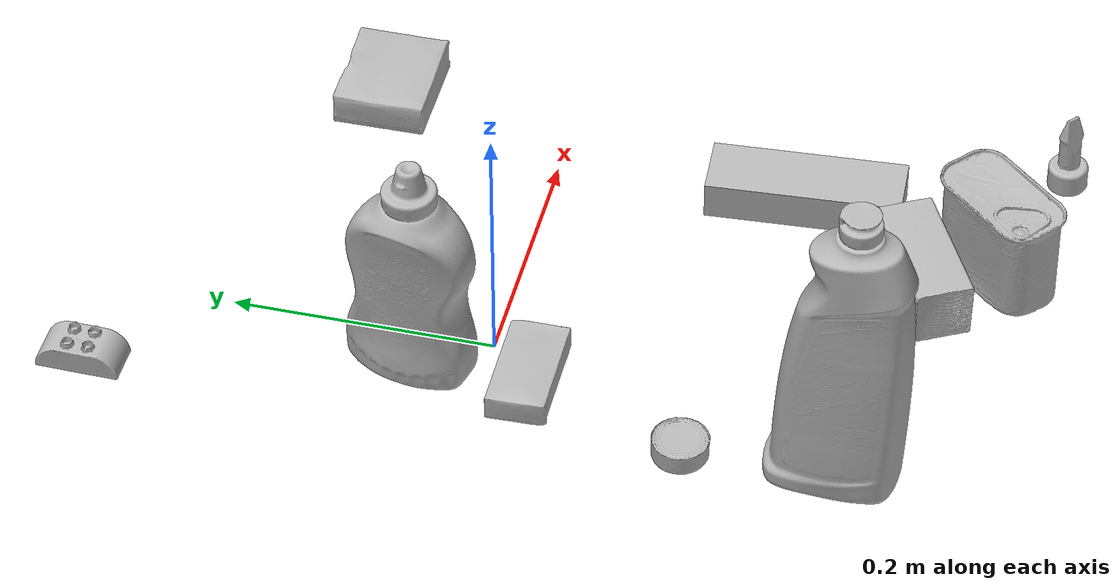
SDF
<sdf version="1.4">
  <world name="default">
    <light name="light1" type="point">
      <pose>0 0 1 0 0 0</pose>
      <diffuse>3 3 3 1</diffuse>
      <specular>3 3 3 1</specular>
    </light>
    <light name="light2" type="point">
      <pose>0 0.5 2 0 0 0</pose>
      <diffuse>1 1 1 1</diffuse>
      <specular>1 1 1 1</specular>
    </light>
    <light name="light3" type="point">
      <pose>0 0.5 2 0 0 0</pose>
      <diffuse>3 3 3 1</diffuse>
      <specular>3 3 3 1</specular>
    </light>
    <scene>
      <ambient>0.7 0.7 0.7</ambient>
    </scene>
    <model name="bottle1">
      <link name="link_bottle1">
        <collision name="default">
          <geometry>
            <mesh>
              <uri>model://bleach_cleanser/collision_meshes/collision.obj</uri>
              <scale>1.0 1.0 1.0</scale>
            </mesh>
          </geometry>
          <surface>
            <friction>
              <ode>
                <mu>0.5</mu>
                <mu2>0.5</mu2>
              </ode>
            </friction>
          <contact>
        <ode>
            <max_vel>0</max_vel>
            <min_depth>0.0001</min_depth>
            <kp>1e8</kp>
        </ode>
    </contact></surface>
        </collision>
        <visual name="default">
          <geometry>
            <mesh>
              <uri>model://bleach_cleanser/visual_meshes/visual.dae</uri>
              <scale>1.0 1.0 1.0</scale>
            </mesh>
          </geometry>
        </visual>
        <inertial>
          <mass>0.5324875712394714</mass>
          <pose>0.00012193183647468686 0.0037838825955986977 -0.024421609938144684 -0.07381669869164166 0.0004201168944593395 -0.0068750469260774934</pose>
          <inertia>
            <ixx>0.0025916947</ixx>
            <iyy>0.0024150796</iyy>
            <izz>0.00044311245</izz>
            <ixy>0</ixy>
            <ixz>0</ixz>
            <iyz>0</iyz>
          </inertia>
        </inertial>
      </link>
      <pose>-0.06497196108102798 -0.26873284578323364 0.12578420341014862 -0.00020029680431052433 1.6645672291492307e-05 3.0797432036522334</pose>
    </model>
    <model name="bottle2">
      <link name="link_bottle2">
        <collision name="default">
          <geometry>
            <mesh>
              <uri>model://mustard_bottle/collision_meshes/collision.obj</uri>
              <scale>1.0 1.0 1.0</scale>
            </mesh>
          </geometry>
          <surface>
            <friction>
              <ode>
                <mu>0.5</mu>
                <mu2>0.5</mu2>
              </ode>
            </friction>
          <contact>
        <ode>
            <max_vel>0</max_vel>
            <min_depth>0.0001</min_depth>
            <kp>1e8</kp>
        </ode>
    </contact></surface>
        </collision>
        <visual name="default">
          <geometry>
            <mesh>
              <uri>model://mustard_bottle/visual_meshes/visual.dae</uri>
              <scale>1.0 1.0 1.0</scale>
            </mesh>
          </geometry>
        </visual>
        <inertial>
          <mass>0.7762566804885864</mass>
          <pose>0.0005032453336752951 -0.0001564739941386506 -0.01747579127550125 0.0004182320844136383 0.0009465775961192733 0.024853776391442105</pose>
          <inertia>
            <ixx>0.0021555587</ixx>
            <iyy>0.0018913207</iyy>
            <izz>0.00056809856</izz>
            <ixy>0</ixy>
            <ixz>0</ixz>
            <iyz>0</iyz>
          </inertia>
        </inertial>
      </link>
      <pose>-0.02849988453090191 0.053334448486566544 0.09583088755607605 -0.01205045357098472 -0.004890032118176829 2.9052407300179626</pose>
    </model>
    <model name="toy1">
      <link name="link_toy1">
        <collision name="default">
          <geometry>
            <mesh>
              <uri>model://e_toy_airplane/collision_meshes/collision.obj</uri>
              <scale>1.0 1.0 1.0</scale>
            </mesh>
          </geometry>
          <surface>
            <friction>
              <ode>
                <mu>0.5</mu>
                <mu2>0.5</mu2>
              </ode>
            </friction>
          <contact>
        <ode>
            <max_vel>0</max_vel>
            <min_depth>0.0001</min_depth>
            <kp>1e8</kp>
        </ode>
    </contact></surface>
        </collision>
        <visual name="default">
          <geometry>
            <mesh>
              <uri>model://e_toy_airplane/visual_meshes/visual.dae</uri>
              <scale>1.0 1.0 1.0</scale>
            </mesh>
          </geometry>
        </visual>
        <inertial>
          <mass>0.01693064346909523</mass>
          <pose>0.00011740485206246376 -2.2482869098894298e-05 -0.011187203228473663 0.005518486263483037 0.009228306153066855 0.15041416456770357</pose>
          <inertia>
            <ixx>5.1674256e-06</ixx>
            <iyy>5.1145657e-06</iyy>
            <izz>1.5530146e-06</izz>
            <ixy>0</ixy>
            <ixz>0</ixz>
            <iyz>0</iyz>
          </inertia>
        </inertial>
      </link>
      <pose>0.2764112055301666 -0.38308900594711304 0.033212222158908844 3.5927101842423495e-05 -0.00016127313407492014 0.7462132808557865</pose>
    </model>
    <model name="toy2">
      <link name="link_toy2">
        <collision name="default">
          <geometry>
            <mesh>
              <uri>model://a_lego_duplo/collision_meshes/collision.obj</uri>
              <scale>1.0 1.0 1.0</scale>
            </mesh>
          </geometry>
          <surface>
            <friction>
              <ode>
                <mu>0.5</mu>
                <mu2>0.5</mu2>
              </ode>
            </friction>
          <contact>
        <ode>
            <max_vel>0</max_vel>
            <min_depth>0.0001</min_depth>
            <kp>1e8</kp>
        </ode>
    </contact></surface>
        </collision>
        <visual name="default">
          <geometry>
            <mesh>
              <uri>model://a_lego_duplo/visual_meshes/visual.dae</uri>
              <scale>1.0 1.0 1.0</scale>
            </mesh>
          </geometry>
        </visual>
        <inertial>
          <mass>0.026311658322811127</mass>
          <pose>-0.000113377594971098 0.00018517566786613315 0.0003692609607242048 -0.014117022075399962 -0.00012566465015892618 6.142856652531641e-05</pose>
          <inertia>
            <ixx>3.3733654e-06</ixx>
            <iyy>7.557078e-06</iyy>
            <izz>9.361117e-06</izz>
            <ixy>0</ixy>
            <ixz>0</ixz>
            <iyz>0</iyz>
          </inertia>
        </inertial>
      </link>
      <pose>-0.08352431654930115 0.29096898436546326 0.012112006545066833 -2.2319834661930668e-07 -6.259444851551437e-07 -1.5796206015516676</pose>
    </model>
    <model name="can1">
      <link name="link_can1">
        <collision name="default">
          <geometry>
            <mesh>
              <uri>model://tuna_fish_can/collision_meshes/collision.obj</uri>
              <scale>0.5 0.5 0.5</scale>
            </mesh>
          </geometry>
          <surface>
            <friction>
              <ode>
                <mu>0.5</mu>
                <mu2>0.5</mu2>
              </ode>
            </friction>
          <contact>
        <ode>
            <max_vel>0</max_vel>
            <min_depth>0.0001</min_depth>
            <kp>1e8</kp>
        </ode>
    </contact></surface>
        </collision>
        <visual name="default">
          <geometry>
            <mesh>
              <uri>model://tuna_fish_can/visual_meshes/visual.dae</uri>
              <scale>0.5 0.5 0.5</scale>
            </mesh>
          </geometry>
        </visual>
        <inertial>
          <mass>0.025987863540649414</mass>
          <pose>-2.0361601855256595e-05 -7.256298886204604e-06 -0.0005269025568850338 -0.0017944787689317097 0.0001716279666079131 0.24054509142506303</pose>
          <inertia>
            <ixx>3.5135977e-06</ixx>
            <iyy>3.4989534e-06</iyy>
            <izz>6.0122675e-06</izz>
            <ixy>0</ixy>
            <ixz>0</ixz>
            <iyz>0</iyz>
          </inertia>
        </inertial>
      </link>
      <pose>-0.07606068253517151 -0.15764909982681274 0.00851999782025814 5.828845101576814e-08 -1.5694693924775617e-08 -1.0020931144624912</pose>
    </model>
    <model name="can2">
      <link name="link_can2">
        <collision name="default">
          <geometry>
            <mesh>
              <uri>model://potted_meat_can/collision_meshes/collision.obj</uri>
              <scale>1.0 1.0 1.0</scale>
            </mesh>
          </geometry>
          <surface>
            <friction>
              <ode>
                <mu>0.5</mu>
                <mu2>0.5</mu2>
              </ode>
            </friction>
          <contact>
        <ode>
            <max_vel>0</max_vel>
            <min_depth>0.0001</min_depth>
            <kp>1e8</kp>
        </ode>
    </contact></surface>
        </collision>
        <visual name="default">
          <geometry>
            <mesh>
              <uri>model://potted_meat_can/visual_meshes/visual.dae</uri>
              <scale>1.0 1.0 1.0</scale>
            </mesh>
          </geometry>
        </visual>
        <inertial>
          <mass>0.2732236087322235</mass>
          <pose>0.00022888141393195838 -5.989111741655506e-05 -0.0006367441383190453 -0.028093326615163196 -0.007232604646238421 0.015406262399643026</pose>
          <inertia>
            <ixx>0.0003514736</ixx>
            <iyy>0.00021354685</iyy>
            <izz>0.00025563012</izz>
            <ixy>0</ixy>
            <ixz>0</ixz>
            <iyz>0</iyz>
          </inertia>
        </inertial>
      </link>
      <pose>0.16177603602409363 -0.3476320207118988 0.04212799295783043 -4.02652346846577e-08 -5.407458299774027e-07 -0.7199962230690298</pose>
    </model>
    <model name="box1">
      <link name="link_box1">
        <collision name="default">
          <geometry>
            <mesh>
              <uri>model://gelatin_box/collision_meshes/collision.obj</uri>
              <scale>1.0 1.0 1.0</scale>
            </mesh>
          </geometry>
          <surface>
            <friction>
              <ode>
                <mu>0.5</mu>
                <mu2>0.5</mu2>
              </ode>
            </friction>
          <contact>
        <ode>
            <max_vel>0</max_vel>
            <min_depth>0.0001</min_depth>
            <kp>1e8</kp>
        </ode>
    </contact></surface>
        </collision>
        <visual name="default">
          <geometry>
            <mesh>
              <uri>model://gelatin_box/visual_meshes/visual.dae</uri>
              <scale>1.0 1.0 1.0</scale>
            </mesh>
          </geometry>
        </visual>
        <inertial>
          <mass>0.14974145591259003</mass>
          <pose>0.0004319618456065655 0.00011156871914863586 -0.0003640321083366871 -0.0010503719798216618 -0.004755819622564704 0.01644055760929568</pose>
          <inertia>
            <ixx>0.00010570526</ixx>
            <iyy>7.550471e-05</iyy>
            <izz>0.00016090693</izz>
            <ixy>0</ixy>
            <ixz>0</ixz>
            <iyz>0</iyz>
          </inertia>
        </inertial>
      </link>
      <pose>0.25530147552490234 0.14796656370162964 0.015168312005698681 0.005596651861766347 -0.007303676625375856 1.5708375820596698</pose>
    </model>
    <model name="box2">
      <link name="link_box2">
        <collision name="default">
          <geometry>
            <mesh>
              <uri>model://sugar_box/collision_meshes/collision.obj</uri>
              <scale>0.5 0.5 0.5</scale>
            </mesh>
          </geometry>
          <surface>
            <friction>
              <ode>
                <mu>0.5</mu>
                <mu2>0.5</mu2>
              </ode>
            </friction>
          <contact>
        <ode>
            <max_vel>0</max_vel>
            <min_depth>0.0001</min_depth>
            <kp>1e8</kp>
        </ode>
    </contact></surface>
        </collision>
        <visual name="default">
          <geometry>
            <mesh>
              <uri>model://sugar_box/visual_meshes/visual.dae</uri>
              <scale>0.5 0.5 0.5</scale>
            </mesh>
          </geometry>
        </visual>
        <inertial>
          <mass>0.07143953442573547</mass>
          <pose>0.0005171863595023751 1.924554817378521e-05 -0.00018182402709499002 -0.0004046263588767038 0.0010506634057764815 0.0026153785560837986</pose>
          <inertia>
            <ixx>1.4880804e-05</ixx>
            <iyy>4.8097805e-05</iyy>
            <izz>5.757883e-05</izz>
            <ixy>0</ixy>
            <ixz>0</ixz>
            <iyz>0</iyz>
          </inertia>
        </inertial>
      </link>
      <pose>-0.03094366565346718 -0.033676933497190475 0.011399307288229465 0.0007746301000433397 -0.02343302739922729 -3.1288795728093155</pose>
    </model>
    <model name="box3">
      <link name="link_box3">
        <collision name="default">
          <geometry>
            <mesh>
              <uri>model://jenga/collision_meshes/collision.obj</uri>
              <scale>1.0 1.0 1.0</scale>
            </mesh>
          </geometry>
          <surface>
            <friction>
              <ode>
                <mu>0.5</mu>
                <mu2>0.5</mu2>
              </ode>
            </friction>
          <contact>
        <ode>
            <max_vel>0</max_vel>
            <min_depth>0.0001</min_depth>
            <kp>1e8</kp>
        </ode>
    </contact></surface>
        </collision>
        <visual name="default">
          <geometry>
            <mesh>
              <uri>model://jenga/visual_meshes/visual.dae</uri>
              <scale>1.0 1.0 1.0</scale>
            </mesh>
          </geometry>
        </visual>
        <inertial>
          <mass>0.2564851939678192</mass>
          <pose>-2.502855807051674e-07 -0.00010250010382151231 -4.0923401684267446e-05 0.0 -7.342154049184251e-07 0.0</pose>
          <inertia>
            <ixx>7.097568e-05</ixx>
            <iyy>0.00048092927</iyy>
            <izz>0.0005134329</izz>
            <ixy>0</ixy>
            <ixz>0</ixz>
            <iyz>0</iyz>
          </inertia>
        </inertial>
      </link>
      <pose>0.20607393980026245 -0.1928325593471527 0.014999995939433575 3.709953066422442e-08 6.0333240666774865e-09 -1.50667204615521</pose>
    </model>
    <model name="box4">
      <link name="link_box4">
        <collision name="default">
          <geometry>
            <mesh>
              <uri>model://wood_block/collision_meshes/collision.obj</uri>
              <scale>0.5 0.5 0.5</scale>
            </mesh>
          </geometry>
          <surface>
            <friction>
              <ode>
                <mu>0.5</mu>
                <mu2>0.5</mu2>
              </ode>
            </friction>
          <contact>
        <ode>
            <max_vel>0</max_vel>
            <min_depth>0.0001</min_depth>
            <kp>1e8</kp>
        </ode>
    </contact></surface>
        </collision>
        <visual name="default">
          <geometry>
            <mesh>
              <uri>model://wood_block/visual_meshes/visual.dae</uri>
              <scale>0.5 0.5 0.5</scale>
            </mesh>
          </geometry>
        </visual>
        <inertial>
          <mass>0.2543213665485382</mass>
          <pose>-2.906657982748584e-06 -0.000285404734313488 0.00013204291462898254 -0.05220794665887619 -0.0051926956484831775 -0.006861378561045436</pose>
          <inertia>
            <ixx>8.508011e-05</ixx>
            <iyy>0.00026876814</iyy>
            <izz>0.00026776275</izz>
            <ixy>0</ixy>
            <ixz>0</ixz>
            <iyz>0</iyz>
          </inertia>
        </inertial>
      </link>
      <pose>0.1327962726354599 -0.2962615489959717 0.022629261016845703 -0.005208434344689173 0.005718744512951235 -2.65005326692415</pose>
    </model>
  <physics type="ode">
      <max_contacts>50</max_contacts>
      <ode>
        <solver>
          <type>quick</type>
          <iters>75</iters>
        </solver>
        <constraints>
          <contact_max_correcting_vel>0</contact_max_correcting_vel>
          <contact_surface_layer>0</contact_surface_layer>
        </constraints>
      </ode>
    </physics></world>
</sdf>
